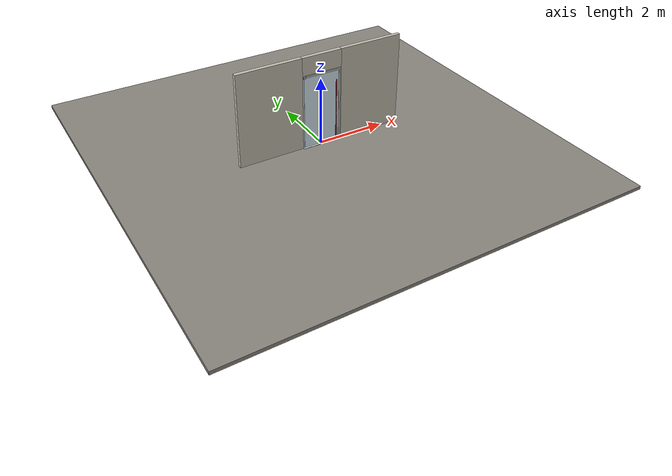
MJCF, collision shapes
<?xml version="1.0" ?>
<mujoco model="db0424_swing_single_simple">
  <compiler angle="radian" meshdir="../../hardware" texturedir="../../textures" autolimits="true" inertiafromgeom="false"/>
  <option timestep="0.002" integrator="implicitfast" cone="elliptic" impratio="10" noslip_iterations="3">
    <flag multiccd="enable"/>
  </option>
  <size memory="16M"/>
  <default>
    <geom condim="4" solref="0.005 1" solimp="0.95 0.99 0.001"/>
    <joint solreflimit="0.005 1" solimplimit="0.95 0.99 0.001"/>
    <tendon solreflimit="0.005 1"/>
    <equality solref="0.002 1"/>
  </default>
  <visual>
    <headlight ambient="0.4 0.4 0.4" diffuse="0.7 0.7 0.7" specular="0.2 0.2 0.2"/>
    <quality shadowsize="4096"/>
    <map znear="0.01" zfar="60"/>
  </visual>
  <asset>
    <mesh name="pull_897e207f65" file="pull_897e207f65.obj"/>
    <material name="mat_floor" rgba="0.55 0.53 0.5 1" specular="0.2" shininess="0.15" reflectance="0"/>
    <material name="mat_wall" rgba="0.78 0.76 0.7 1" specular="0.2" shininess="0.1" reflectance="0"/>
    <material name="mat_leaf" rgba="0.85 0.92 0.95 0.25" specular="0.2" shininess="0.95" reflectance="0.1"/>
    <material name="mat_glass_leaf" rgba="0.85 0.92 0.95 0.25" specular="0.2" shininess="0.95" reflectance="0.1"/>
    <material name="mat_patch" rgba="0.75 0.76 0.77 1" specular="0.8" shininess="0.65" reflectance="0.4"/>
    <material name="mat_hinge" rgba="0.65 0.66 0.68 1" specular="0.74" shininess="0.5" reflectance="0.36"/>
    <material name="mat_op_stainless" rgba="0.75 0.76 0.77 1" specular="0.8" shininess="0.65" reflectance="0.4"/>
    <material name="mat_frame" rgba="0.8 0.81 0.83 1" specular="0.8" shininess="0.6" reflectance="0.4"/>
    <material name="mat_threshold" rgba="0.8 0.81 0.83 1" specular="0.8" shininess="0.6" reflectance="0.4"/>
    <material name="mat_closer" rgba="0.22 0.17 0.13 1" specular="0.8" shininess="0.6" reflectance="0.4"/>
    <texture name="skybox" type="skybox" builtin="gradient" rgb1="0.6 0.7 0.85" rgb2="0.9 0.92 0.95" width="256" height="256"/>
  </asset>
  <worldbody>
    <light name="sun" pos="1.5 -2.5 4" dir="-0.3 0.5 -0.8" directional="true" diffuse="0.8 0.8 0.8" specular="0.3 0.3 0.3" castshadow="true"/>
    <light name="fill" pos="-1.5 2.5 3" dir="0.3 -0.5 -0.7" directional="true" diffuse="0.35 0.35 0.4" castshadow="false"/>
    <camera name="robot_view" pos="0 -2.609812 1.812087" xyaxes="1 0 0 0 0.26963 0.962964" fovy="52"/>
    <camera name="far_view" pos="0 2.665812 1.812087" xyaxes="-1 0 0 0 -0.26963 0.962964" fovy="52"/>
    <camera name="iso" pos="2.004737 -2.187762 2.234138" xyaxes="0.741536 0.670913 0 -0.242917 0.268487 0.932151" fovy="46"/>
    <camera name="detail_handle" pos="0.6095 -0.8875 1.296" xyaxes="0.97561 0.219512 0 -0.070934 0.315262 0.94635" fovy="38"/>
    <geom name="floor" type="box" size="6 6 0.05" pos="0 0 -0.05" material="mat_floor" group="0" contype="1" conaffinity="1" friction="0.8 0.005 0.0001" density="2400"/>
    <geom name="wall_left" type="box" size="0.95825 0.0575 1.3735" pos="-1.54175 0.028 1.3735" material="mat_wall" group="0" contype="1" conaffinity="1" friction="0.6 0.005 0.0001" density="800"/>
    <geom name="wall_right" type="box" size="0.94325 0.0575 1.3735" pos="1.55675 0.028 1.3735" material="mat_wall" group="0" contype="1" conaffinity="1" friction="0.6 0.005 0.0001" density="800"/>
    <geom name="wall_header" type="box" size="0.5985 0.0575 0.2625" pos="0.015 0.028 2.4845" material="mat_wall" group="0" contype="1" conaffinity="1" friction="0.6 0.005 0.0001" density="800"/>
    <geom name="pivot_bottom_socket" type="box" size="0.035 0.035 0.0085" pos="-0.5355 -0.0295 -0.0015" material="mat_hinge" group="1" contype="0" conaffinity="0" density="7850"/>
    <geom name="pivot_top_bracket" type="box" size="0.035 0.035 0.0355" pos="-0.5355 -0.0295 2.1865" material="mat_hinge" group="1" contype="0" conaffinity="0" density="7850"/>
    <geom name="jamb_hinge" type="box" size="0.0225 0.0575 1.0735" pos="-0.561 0.028 1.0735" material="mat_frame" group="0" contype="1" conaffinity="1" friction="0.6 0.005 0.0001" density="300"/>
    <geom name="jamb_strike" type="box" size="0.0225 0.0575 1.0735" pos="0.561 0.028 1.0735" material="mat_frame" group="0" contype="1" conaffinity="1" friction="0.6 0.005 0.0001" density="300"/>
    <geom name="stud_strike" type="box" size="0.015 0.0575 1.0735" pos="0.5985 0.028 1.0735" material="mat_wall" group="0" contype="1" conaffinity="1" friction="0.6 0.005 0.0001" density="500"/>
    <geom name="jamb_head" type="box" size="0.5985 0.0575 0.0225" pos="0.015 0.028 2.1695" material="mat_frame" group="0" contype="1" conaffinity="1" friction="0.6 0.005 0.0001" density="300"/>
    <geom name="head_stud" type="box" size="0.5985 0.0575 0.015" pos="0.015 0.028 2.207" material="mat_wall" group="0" contype="1" conaffinity="1" friction="0.6 0.005 0.0001" density="500"/>
    <geom name="threshold" type="box" size="0.5835 0.1075 0.004" pos="0 0.028 0.004" material="mat_threshold" group="0" contype="1" conaffinity="1" friction="0.6 0.005 0.0001" density="2700"/>
    <site name="approach_point" pos="0 -1.5 0" quat="1 0 0 0" size="0.05" rgba="0.2 0.9 0.2 0.5" group="4"/>
    <site name="goal_point" pos="0 1.5 0" quat="1 0 0 0" size="0.05" rgba="0.2 0.9 0.2 0.5" group="4"/>
    <site name="door_plane_center" pos="0 0 1.0735" quat="1 0 0 0" size="0.02" rgba="0.2 0.9 0.2 0.5" group="4"/>
    <body name="leaf" pos="-0.5385 0 0">
      <inertial pos="0.616735 0 1.065185" mass="118.702116" quat="0.496262 0.496262 -0.50371 0.50371" diaginertia="12.619626013 42.893995617 55.168699471"/>
      <joint name="leaf_hinge" type="hinge" axis="0 0 -1" pos="0.003 -0.0295 0" limited="true" range="0 1.832596" solreflimit="0.02 1" damping="10.49954" frictionloss="3.975541" stiffness="35.039552" springref="-1.679816" armature="0.02"/>
      <geom name="leaf_glass" type="box" size="0.5335 0.0225 1.067" pos="0.5395 0 1.076" material="mat_glass_leaf" group="0" contype="1" conaffinity="1" friction="0.4 0.005 0.0001" density="1"/>
      <geom name="leaf_pull_n" type="mesh" mesh="pull_897e207f65" pos="0.968 -0.0225 1.016" quat="0.707107 0.707107 0 0" material="mat_op_stainless" group="1" contype="0" conaffinity="0" density="3000"/>
      <geom name="leaf_pull_col_n" type="capsule" size="0.016 0.88" pos="0.968 -0.0875 1.016" material="mat_op_stainless" group="3" contype="1" conaffinity="1" rgba="0.8 0.3 0.3 0.25" friction="0.7 0.01 0.0001" density="3000"/>
      <geom name="leaf_pull_p" type="mesh" mesh="pull_897e207f65" pos="0.968 0.0225 1.016" quat="-0.707107 0.707107 0 0" material="mat_op_stainless" group="1" contype="0" conaffinity="0" density="3000"/>
      <geom name="leaf_pull_col_p" type="capsule" size="0.016 0.88" pos="0.968 0.0875 1.016" material="mat_op_stainless" group="3" contype="1" conaffinity="1" rgba="0.8 0.3 0.3 0.25" friction="0.7 0.01 0.0001" density="3000"/>
      <site name="leaf_pull_grip_n" pos="0.968 -0.0875 1.016" quat="1 0 0 0" size="0.012" rgba="0.2 0.9 0.2 0.5" group="4"/>
      <site name="leaf_pull_grip_p" pos="0.968 0.0875 1.016" quat="1 0 0 0" size="0.012" rgba="0.2 0.9 0.2 0.5" group="4"/>
      <site name="leaf_edge_mid" pos="1.073 0 1.067" quat="1 0 0 0" size="0.02" rgba="0.2 0.9 0.2 0.5" group="4"/>
    </body>
  </worldbody>
  <sensor>
    <jointpos name="leaf_hinge_pos" joint="leaf_hinge"/>
    <jointvel name="leaf_hinge_vel" joint="leaf_hinge"/>
  </sensor>
</mujoco>
